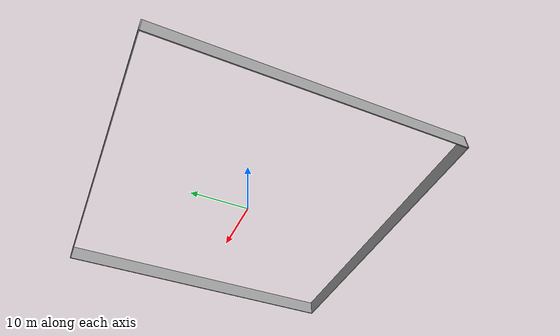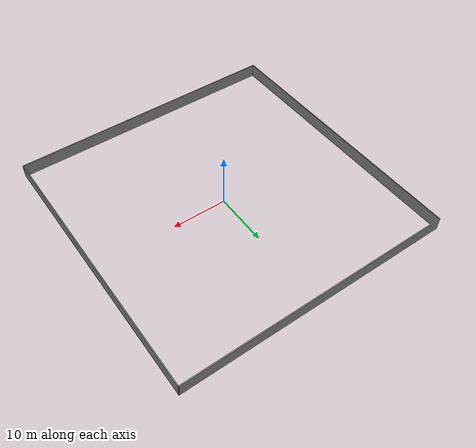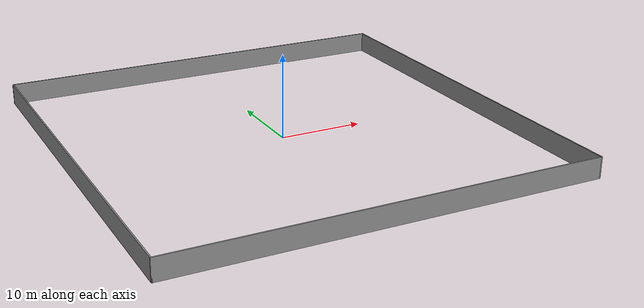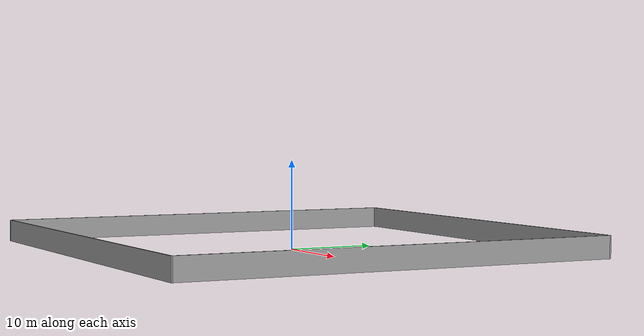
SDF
<?xml version='1.0'?>
<sdf version='1.7'>
  <model name='fence50'>
    <pose>0 0 0 0 -0 0</pose>
    <link name='Wall_0'>
      <collision name='Wall_0_Collision'>
        <geometry>
          <box>
            <size>50.15 0.15 2.5</size>
          </box>
        </geometry>
        <pose>0 0 1.25 0 -0 0</pose>
      </collision>
      <visual name='Wall_0_Visual'>
        <pose>0 0 1.25 0 -0 0</pose>
        <geometry>
          <box>
            <size>50.15 0.15 2.5</size>
          </box>
        </geometry>
        <material>
          <script>
            <uri>file://media/materials/scripts/gazebo.material</uri>
            <name>Gazebo/Grey</name>
          </script>
          <ambient>1 1 1 1</ambient>
        </material>
        <meta>
          <layer>0</layer>
        </meta>
      </visual>
      <pose>0 25 0 0 -0 3.14159</pose>
    </link>
    <link name='Wall_1'>
      <collision name='Wall_1_Collision'>
        <geometry>
          <box>
            <size>50.15 0.15 2.5</size>
          </box>
        </geometry>
        <pose>0 0 1.25 0 -0 0</pose>
      </collision>
      <visual name='Wall_1_Visual'>
        <pose>0 0 1.25 0 -0 0</pose>
        <geometry>
          <box>
            <size>50.15 0.15 2.5</size>
          </box>
        </geometry>
        <material>
          <script>
            <uri>file://media/materials/scripts/gazebo.material</uri>
            <name>Gazebo/Grey</name>
          </script>
          <ambient>1 1 1 1</ambient>
        </material>
        <meta>
          <layer>0</layer>
        </meta>
      </visual>
      <pose>-25 0 0 0 -0 -1.5708</pose>
    </link>
    <link name='Wall_2'>
      <collision name='Wall_2_Collision'>
        <geometry>
          <box>
            <size>50.1504 0.15 2.5</size>
          </box>
        </geometry>
        <pose>0 0 1.25 0 -0 0</pose>
      </collision>
      <visual name='Wall_2_Visual'>
        <pose>0 0 1.25 0 -0 0</pose>
        <geometry>
          <box>
            <size>50.1504 0.15 2.5</size>
          </box>
        </geometry>
        <material>
          <script>
            <uri>file://media/materials/scripts/gazebo.material</uri>
            <name>Gazebo/Grey</name>
          </script>
          <ambient>1 1 1 1</ambient>
        </material>
        <meta>
          <layer>0</layer>
        </meta>
      </visual>
      <pose>0 -25 0 0 -0 0</pose>
    </link>
    <link name='Wall_3'>
      <collision name='Wall_3_Collision'>
        <geometry>
          <box>
            <size>50.15 0.15 2.5</size>
          </box>
        </geometry>
        <pose>0 0 1.25 0 -0 0</pose>
      </collision>
      <visual name='Wall_3_Visual'>
        <pose>0 0 1.25 0 -0 0</pose>
        <geometry>
          <box>
            <size>50.15 0.15 2.5</size>
          </box>
        </geometry>
        <material>
          <script>
            <uri>file://media/materials/scripts/gazebo.material</uri>
            <name>Gazebo/Grey</name>
          </script>
          <ambient>1 1 1 1</ambient>
        </material>
        <meta>
          <layer>0</layer>
        </meta>
      </visual>
      <pose>25 0 0 0 -0 1.5708</pose>
    </link>
    <static>1</static>
  </model>
</sdf>
